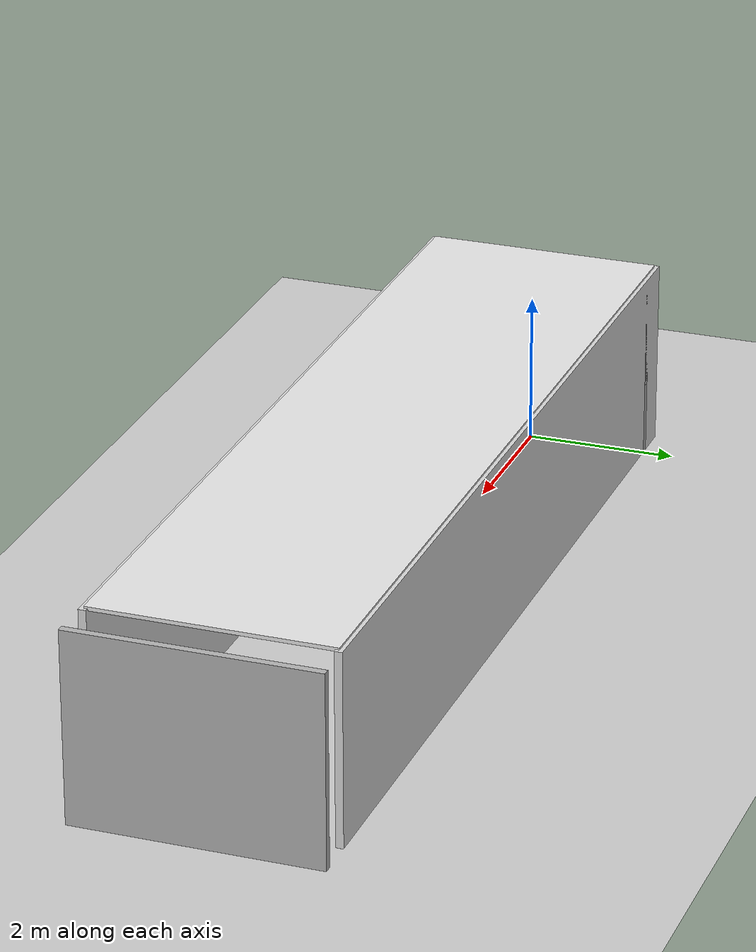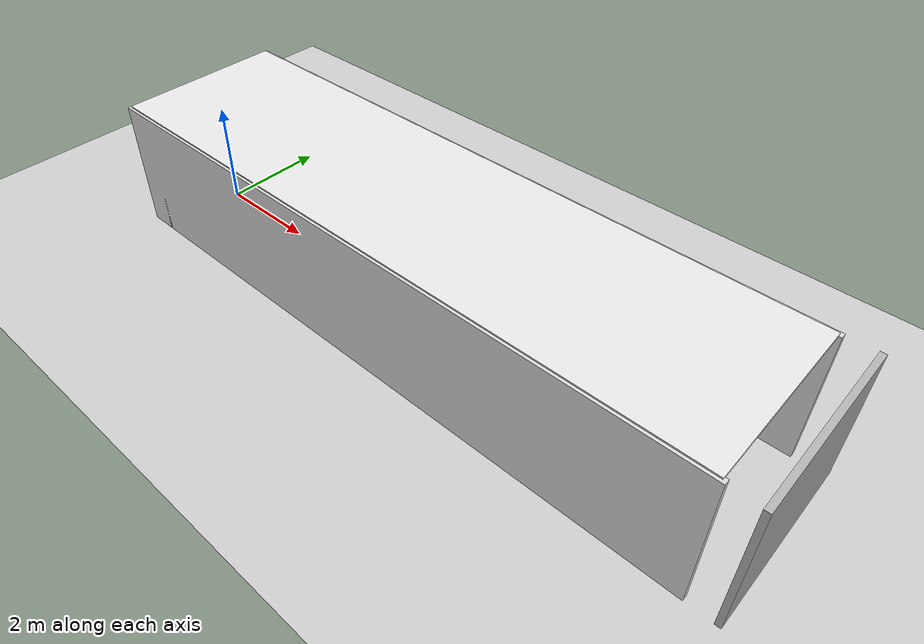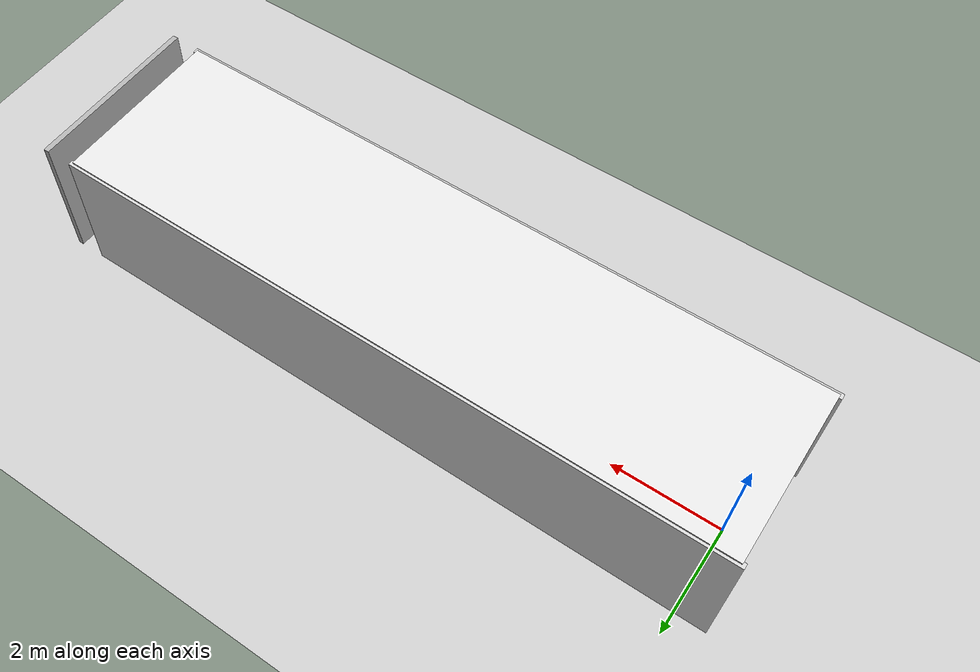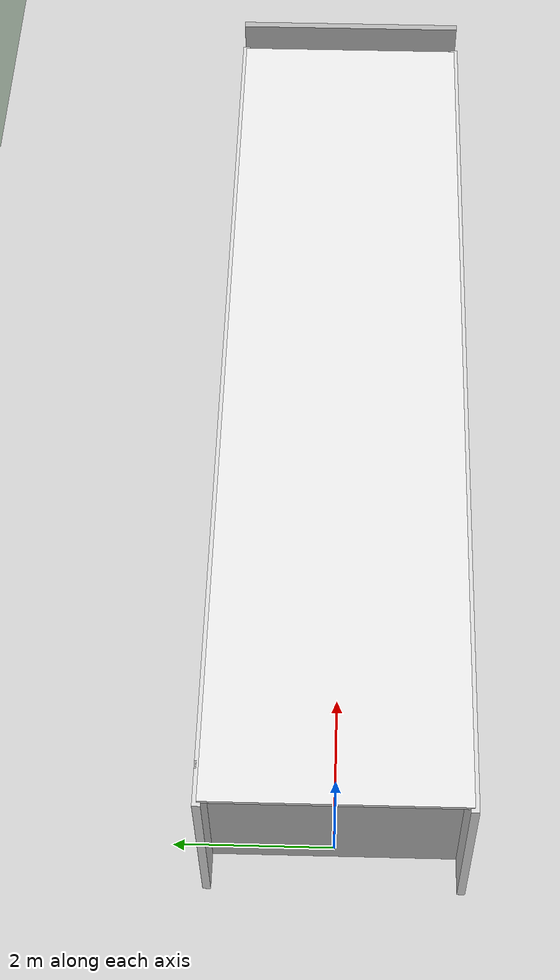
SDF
<?xml version="1.0"?>
<sdf version="1.6">
  <world name="mine_detection_world">

    <!-- ── 물리 설정 ─────────────────────────────────────────────── -->
    <!-- gazebo_ros_init / gazebo_ros_factory 는 gazebo_ros launch 가
         -s 플래그로 서버 플러그인으로 로드하므로 여기서 중복 선언하지 않음 -->
    <physics name="default_physics" default="0" type="ode">
      <max_step_size>0.001</max_step_size>
      <real_time_factor>1</real_time_factor>
      <real_time_update_rate>1000</real_time_update_rate>
      <gravity>0 0 -9.8</gravity>
    </physics>

    <!-- ── 조명 ──────────────────────────────────────────────────── -->
    <light type="directional" name="sun">
      <cast_shadows>true</cast_shadows>
      <pose>0 0 10 0 0 0</pose>
      <diffuse>0.9 0.9 0.9 1</diffuse>
      <specular>0.1 0.1 0.1 1</specular>
      <attenuation>
        <range>1000</range>
        <constant>0.9</constant>
        <linear>0.01</linear>
        <quadratic>0.001</quadratic>
      </attenuation>
      <direction>-0.5 0.1 -0.9</direction>
    </light>

    <!-- 실내 분위기를 위한 추가 포인트 라이트 -->
    <light type="point" name="indoor_light_1">
      <pose>4 0 2.3 0 0 0</pose>
      <diffuse>0.8 0.8 0.7 1</diffuse>
      <specular>0.1 0.1 0.1 1</specular>
      <attenuation>
        <range>8</range>
        <constant>0.5</constant>
        <linear>0.1</linear>
        <quadratic>0.05</quadratic>
      </attenuation>
      <cast_shadows>false</cast_shadows>
    </light>
    <light type="point" name="indoor_light_2">
      <pose>9 0 2.3 0 0 0</pose>
      <diffuse>0.8 0.8 0.7 1</diffuse>
      <specular>0.1 0.1 0.1 1</specular>
      <attenuation>
        <range>8</range>
        <constant>0.5</constant>
        <linear>0.1</linear>
        <quadratic>0.05</quadratic>
      </attenuation>
      <cast_shadows>false</cast_shadows>
    </light>

    <!-- ── 바닥 ──────────────────────────────────────────────────── -->
    <include>
      <uri>model://ground_plane</uri>
    </include>

    <!-- ── 북쪽 벽 (y = 1.5) ──────────────────────────────────────── -->
    <model name="north_wall">
      <static>true</static>
      <pose>5.5 1.55 1.25 0 0 0</pose>
      <link name="link">
        <collision name="collision">
          <geometry><box><size>12.1 0.1 2.5</size></box></geometry>
        </collision>
        <visual name="visual">
          <geometry><box><size>12.1 0.1 2.5</size></box></geometry>
          <material>
            <ambient>0.85 0.85 0.85 1</ambient>
            <diffuse>0.85 0.85 0.85 1</diffuse>
          </material>
        </visual>
      </link>
    </model>

    <!-- ── 남쪽 벽 (y = -1.5) ─────────────────────────────────────── -->
    <model name="south_wall">
      <static>true</static>
      <pose>5.5 -1.55 1.25 0 0 0</pose>
      <link name="link">
        <collision name="collision">
          <geometry><box><size>12.1 0.1 2.5</size></box></geometry>
        </collision>
        <visual name="visual">
          <geometry><box><size>12.1 0.1 2.5</size></box></geometry>
          <material>
            <ambient>0.85 0.85 0.85 1</ambient>
            <diffuse>0.85 0.85 0.85 1</diffuse>
          </material>
        </visual>
      </link>
    </model>

    <!-- ── 서쪽 벽 (x = 0) ────────────────────────────────────────── -->
    <model name="west_wall">
      <static>true</static>
      <pose>-0.05 0 1.25 0 0 0</pose>
      <link name="link">
        <collision name="collision">
          <geometry><box><size>0.1 3.2 2.5</size></box></geometry>
        </collision>
        <visual name="visual">
          <geometry><box><size>0.1 3.2 2.5</size></box></geometry>
          <material>
            <ambient>0.7 0.7 0.7 1</ambient>
            <diffuse>0.7 0.7 0.7 1</diffuse>
          </material>
        </visual>
      </link>
    </model>

    <!-- ── 동쪽 벽 (x = 12) ───────────────────────────────────────── -->
    <model name="east_wall">
      <static>true</static>
      <pose>12.05 0 1.25 0 0 0</pose>
      <link name="link">
        <collision name="collision">
          <geometry><box><size>0.1 3.2 2.5</size></box></geometry>
        </collision>
        <visual name="visual">
          <geometry><box><size>0.1 3.2 2.5</size></box></geometry>
          <material>
            <ambient>0.7 0.7 0.7 1</ambient>
            <diffuse>0.7 0.7 0.7 1</diffuse>
          </material>
        </visual>
      </link>
    </model>

    <!-- ── 천장 ──────────────────────────────────────────────────── -->
    <model name="ceiling">
      <static>true</static>
      <pose>5.5 0 2.5 0 0 0</pose>
      <link name="link">
        <visual name="visual">
          <geometry><box><size>12 3.1 0.05</size></box></geometry>
          <material>
            <ambient>0.9 0.9 0.9 1</ambient>
            <diffuse>0.9 0.9 0.9 1</diffuse>
          </material>
        </visual>
      </link>
    </model>

    <!-- Tag 0: 북쪽 벽, x=3.0 (클러스터 중심) -->
    <include>
      <uri>model://apriltag_36h11_0</uri>
      <name>apriltag_0</name>
      <pose>3.0 1.45 0.8 -1.5707963 0 0</pose>
    </include>

    <!-- Tag 1: 북쪽 벽, x=3.3 (클러스터) -->
    <include>
      <uri>model://apriltag_36h11_1</uri>
      <name>apriltag_1</name>
      <pose>3.3 1.45 0.8 -1.5707963 0 0</pose>
    </include>

    <!-- Tag 2: 북쪽 벽, x=2.7 (클러스터) -->
    <include>
      <uri>model://apriltag_36h11_2</uri>
      <name>apriltag_2</name>
      <pose>2.7 1.45 0.8 -1.5707963 0 0</pose>
    </include>

    <!-- Tag 3: 남쪽 벽, x=8.0 (단독) -->
    <include>
      <uri>model://apriltag_36h11_3</uri>
      <name>apriltag_3</name>
      <pose>8.0 -1.45 0.8 1.5707963 0 0</pose>
    </include>

  </world>
</sdf>

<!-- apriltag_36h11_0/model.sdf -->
<!--
  AprilTag 36h11 ID=0  (tag36_11_00000.png)
  물리 크기: 0.162m x 0.162m x 0.001m (얇은 평판)
  텍스처 이미지는 scripts/setup_apriltag_textures.sh 로 다운로드.
-->
<sdf version="1.6">
  <model name="apriltag_36h11_0">
    <static>true</static>
    <link name="link">
      <visual name="visual">
        <geometry>
          <box>
            <size>0.162 0.162 0.001</size>
          </box>
        </geometry>
        <material>
          <script>
            <uri>model://apriltag_36h11_0/materials/scripts</uri>
            <uri>model://apriltag_36h11_0/materials/textures</uri>
            <name>AprilTag36h11_0</name>
          </script>
        </material>
      </visual>
      <!-- 충돌체 제거: 태그는 얇아서 충돌 무시 -->
    </link>
  </model>
</sdf>

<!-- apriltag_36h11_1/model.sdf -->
<sdf version="1.6">
  <model name="apriltag_36h11_1">
    <static>true</static>
    <link name="link">
      <visual name="visual">
        <geometry>
          <box>
            <size>0.162 0.162 0.001</size>
          </box>
        </geometry>
        <material>
          <script>
            <uri>model://apriltag_36h11_1/materials/scripts</uri>
            <uri>model://apriltag_36h11_1/materials/textures</uri>
            <name>AprilTag36h11_1</name>
          </script>
        </material>
      </visual>
    </link>
  </model>
</sdf>

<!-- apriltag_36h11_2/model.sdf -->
<sdf version="1.6">
  <model name="apriltag_36h11_2">
    <static>true</static>
    <link name="link">
      <visual name="visual">
        <geometry>
          <box>
            <size>0.162 0.162 0.001</size>
          </box>
        </geometry>
        <material>
          <script>
            <uri>model://apriltag_36h11_2/materials/scripts</uri>
            <uri>model://apriltag_36h11_2/materials/textures</uri>
            <name>AprilTag36h11_2</name>
          </script>
        </material>
      </visual>
    </link>
  </model>
</sdf>

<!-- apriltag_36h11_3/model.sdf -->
<sdf version="1.6">
  <model name="apriltag_36h11_3">
    <static>true</static>
    <link name="link">
      <visual name="visual">
        <geometry>
          <box>
            <size>0.162 0.162 0.001</size>
          </box>
        </geometry>
        <material>
          <script>
            <uri>model://apriltag_36h11_3/materials/scripts</uri>
            <uri>model://apriltag_36h11_3/materials/textures</uri>
            <name>AprilTag36h11_3</name>
          </script>
        </material>
      </visual>
    </link>
  </model>
</sdf>
